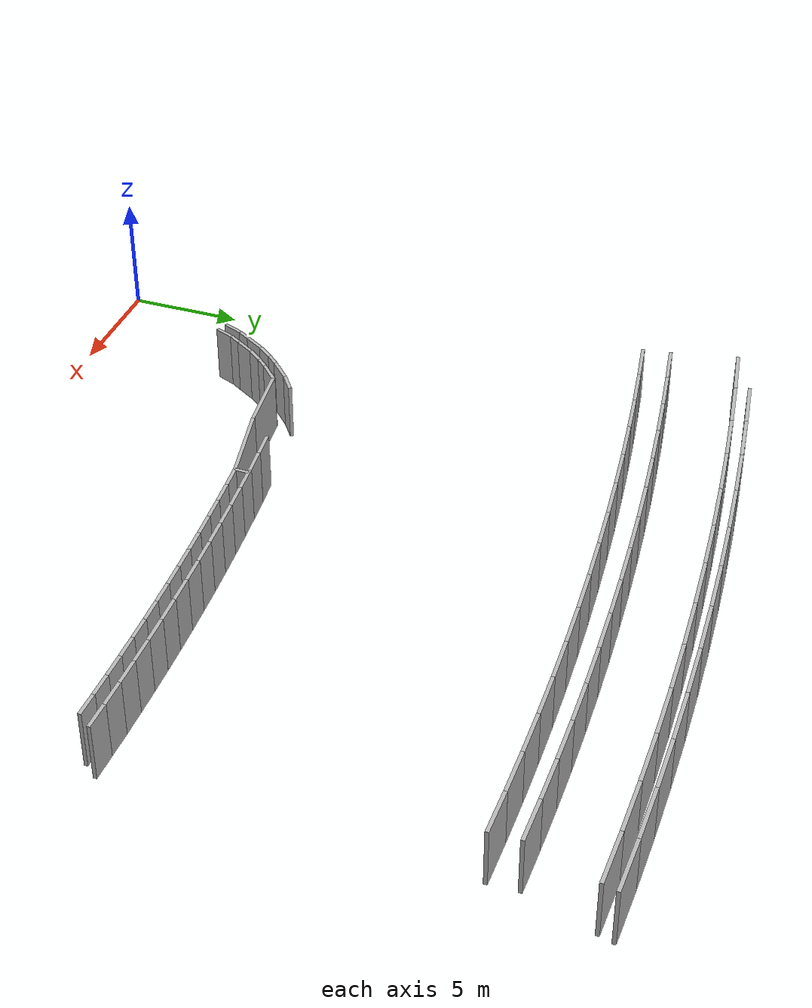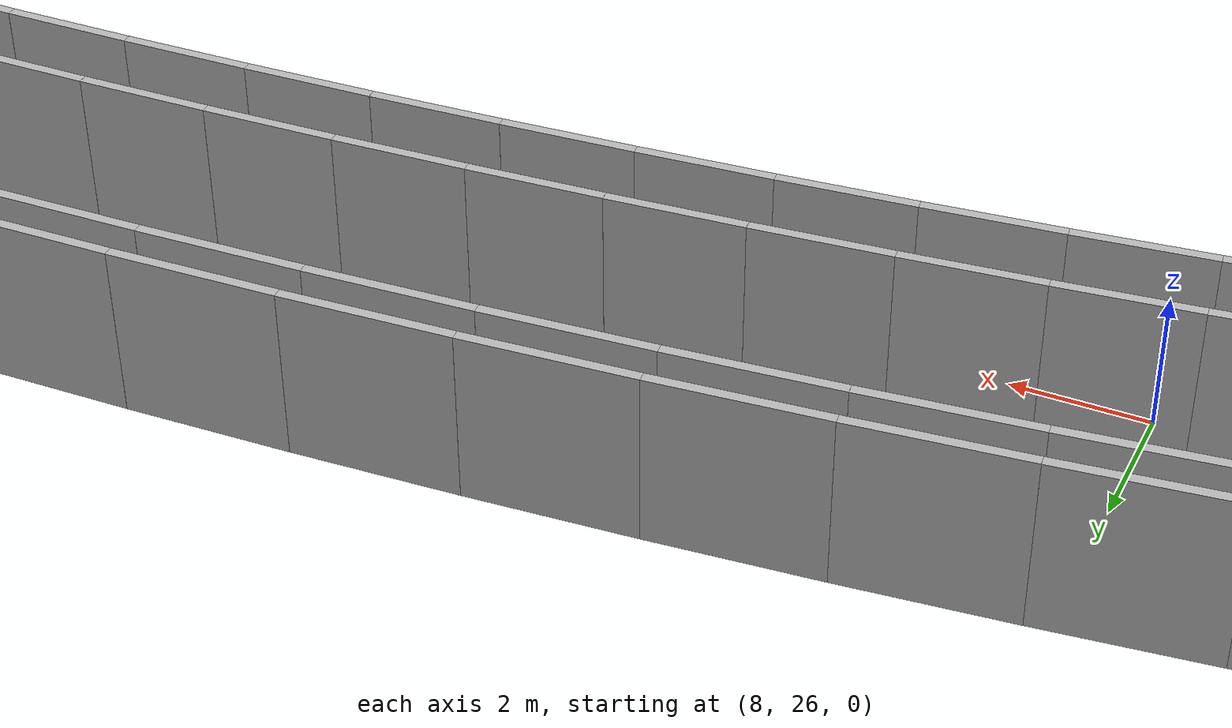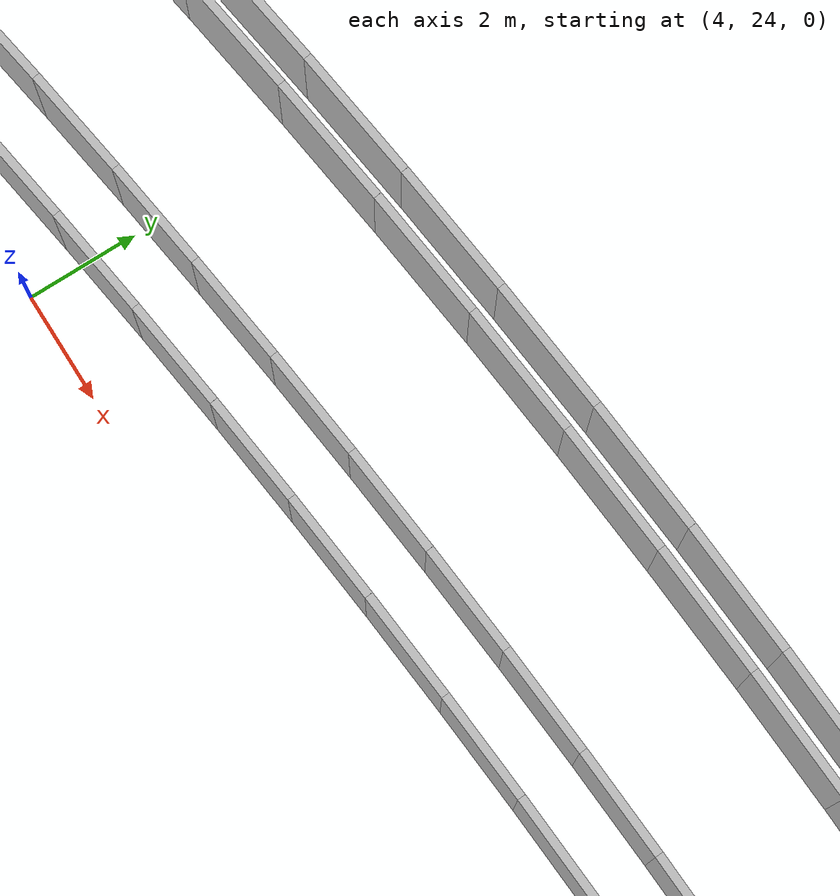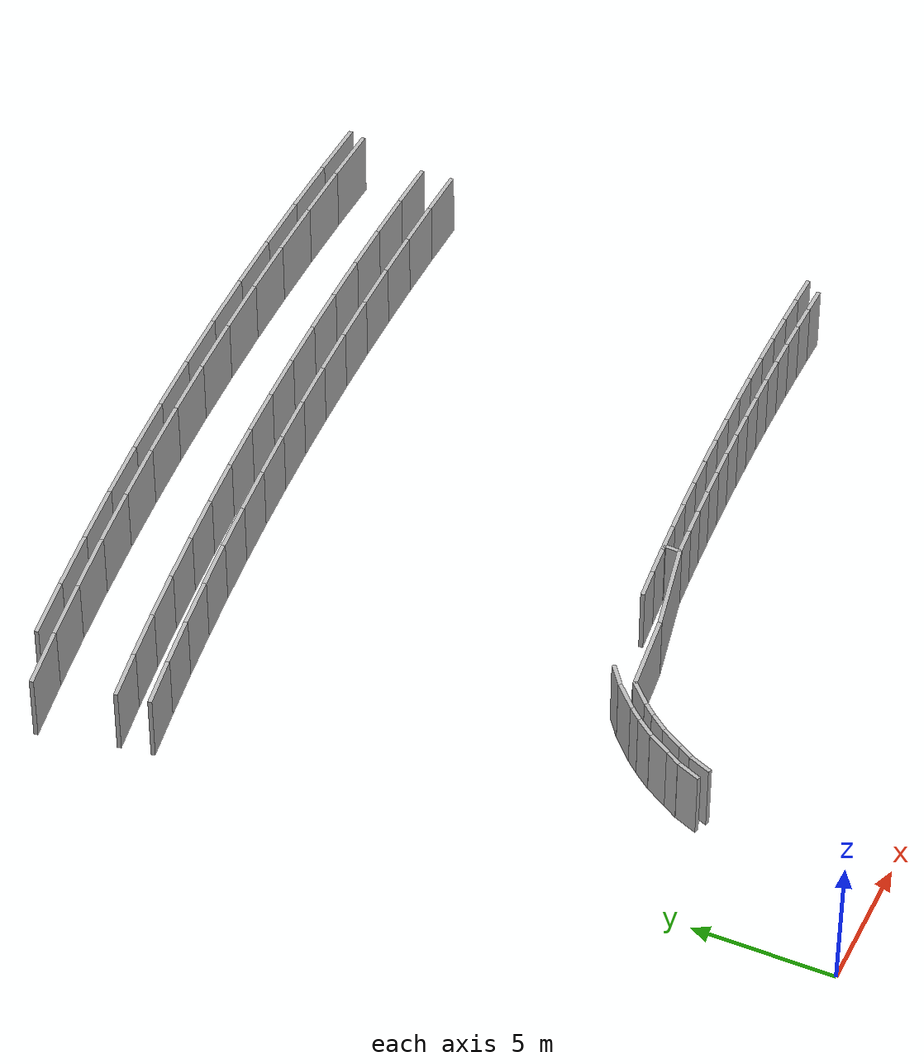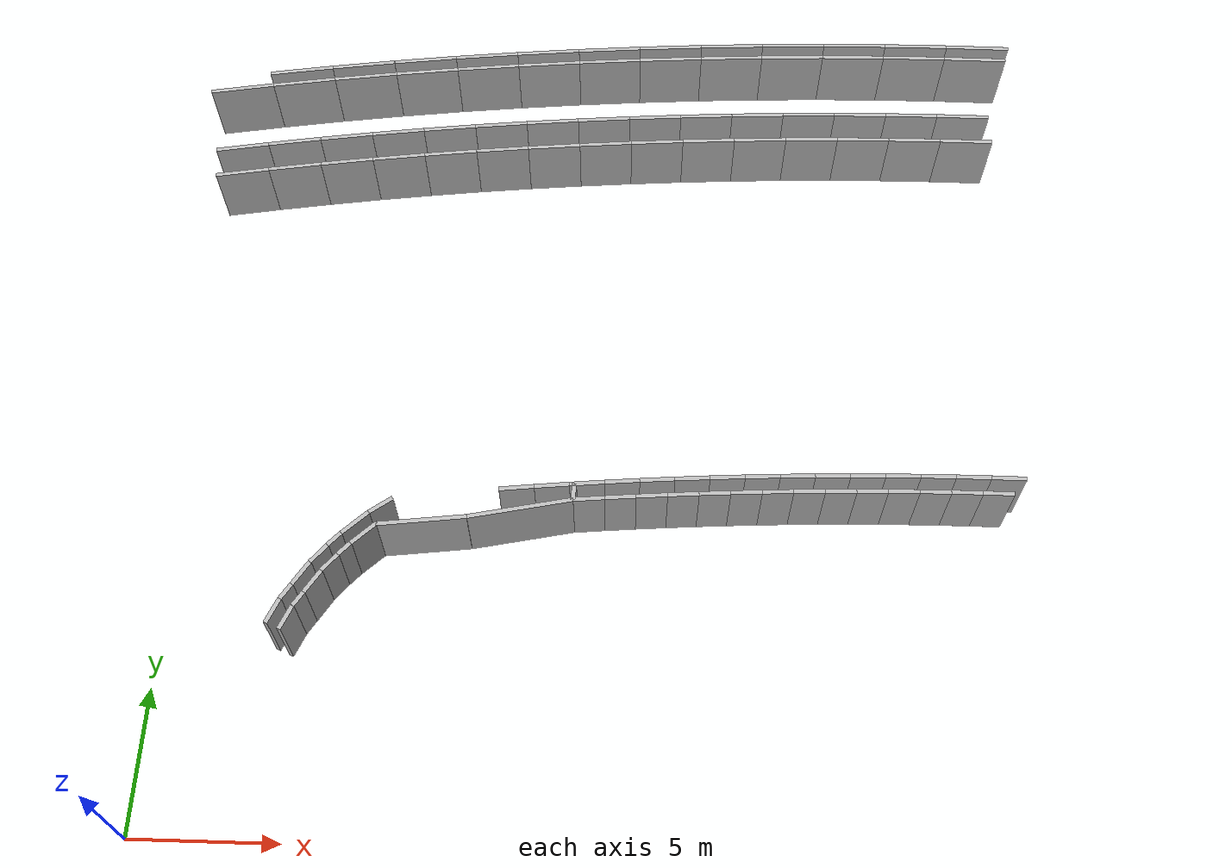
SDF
<sdf version="1.6">
 <model name="sps_0406">
  <static>1</static>
  <allow_auto_disable>0</allow_auto_disable>
  <link name="Wall451">
   <collision name="collision"><geometry><box><size>0.928626 0.15 2.5</size></box></geometry></collision>
   <visual name="visual">
    <geometry><box><size>0.928626 0.15 2.5</size></box></geometry>
    <transparency>0.0</transparency>
   </visual>
   <pose>7.33526 10.7762 1.25 0 -0 0.629869</pose>
  </link>
  <link name="Wall2146">
   <collision name="collision"><geometry><box><size>3.03317 0.15 2.5</size></box></geometry></collision>
   <visual name="visual">
    <geometry><box><size>3.03317 0.15 2.5</size></box></geometry>
    <transparency>0.0</transparency>
   </visual>
   <pose>8.74166 10.2674 1.25 0 -0 0.120362</pose>
  </link>
  <link name="Wall2148">
   <collision name="collision"><geometry><box><size>0.59976 0.15 2.5</size></box></geometry></collision>
   <visual name="visual">
    <geometry><box><size>0.59976 0.15 2.5</size></box></geometry>
    <transparency>0.0</transparency>
   </visual>
   <pose>13.7914 11.4866 1.25 0 -0 1.5204</pose>
  </link>
  <link name="Wall2537">
   <collision name="collision"><geometry><box><size>3.60525 0.15 2.5</size></box></geometry></collision>
   <visual name="visual">
    <geometry><box><size>3.60525 0.15 2.5</size></box></geometry>
    <transparency>0.0</transparency>
   </visual>
   <pose>12.0118 10.8183 1.25 0 -0 0.206048</pose>
  </link>
  <link name="Wall6654">
   <collision name="collision"><geometry><box><size>1.15065 0.15 2.5</size></box></geometry></collision>
   <visual name="visual">
    <geometry><box><size>1.15065 0.15 2.5</size></box></geometry>
    <transparency>0.0</transparency>
   </visual>
   <pose>6.54214 10.1073 1.25 0 0 -2.38384</pose>
  </link>
  <link name="Wall6655">
   <collision name="collision"><geometry><box><size>0.595889 0.15 2.5</size></box></geometry></collision>
   <visual name="visual">
    <geometry><box><size>0.595889 0.15 2.5</size></box></geometry>
    <transparency>0.0</transparency>
   </visual>
   <pose>5.92394 9.49129 1.25 0 0 -2.30801</pose>
  </link>
  <link name="Wall6656">
   <collision name="collision"><geometry><box><size>0.803346 0.15 2.5</size></box></geometry></collision>
   <visual name="visual">
    <geometry><box><size>0.803346 0.15 2.5</size></box></geometry>
    <transparency>0.0</transparency>
   </visual>
   <pose>5.47304 8.9568 1.25 0 0 -2.24454</pose>
  </link>
  <link name="Wall6657">
   <collision name="collision"><geometry><box><size>0.947839 0.15 2.5</size></box></geometry></collision>
   <visual name="visual">
    <geometry><box><size>0.947839 0.15 2.5</size></box></geometry>
    <transparency>0.0</transparency>
   </visual>
   <pose>4.97146 8.24089 1.25 0 0 -2.1289</pose>
  </link>
  <link name="Wall6658">
   <collision name="collision"><geometry><box><size>0.612831 0.15 2.5</size></box></geometry></collision>
   <visual name="visual">
    <geometry><box><size>0.612831 0.15 2.5</size></box></geometry>
    <transparency>0.0</transparency>
   </visual>
   <pose>4.55816 7.57899 1.25 0 0 -2.1291</pose>
  </link>
  <link name="Wall6659">
   <collision name="collision"><geometry><box><size>0.921616 0.15 2.5</size></box></geometry></collision>
   <visual name="visual">
    <geometry><box><size>0.921616 0.15 2.5</size></box></geometry>
    <transparency>0.0</transparency>
   </visual>
   <pose>4.21633 6.8947 1.25 0 0 -1.97093</pose>
  </link>
  <link name="Wall6680">
   <collision name="collision"><geometry><box><size>1.97999 0.15 2.5</size></box></geometry></collision>
   <visual name="visual">
    <geometry><box><size>1.97999 0.15 2.5</size></box></geometry>
    <transparency>0.0</transparency>
   </visual>
   <pose>28.1081 28.0351 1.25 0 -0 3.13857</pose>
  </link>
  <link name="Wall6681">
   <collision name="collision"><geometry><box><size>1.97989 0.15 2.5</size></box></geometry></collision>
   <visual name="visual">
    <geometry><box><size>1.97989 0.15 2.5</size></box></geometry>
    <transparency>0.0</transparency>
   </visual>
   <pose>26.1282 28.0286 1.25 0 0 -3.13201</pose>
  </link>
  <link name="Wall6682">
   <collision name="collision"><geometry><box><size>1.9801 0.15 2.5</size></box></geometry></collision>
   <visual name="visual">
    <geometry><box><size>1.9801 0.15 2.5</size></box></geometry>
    <transparency>0.0</transparency>
   </visual>
   <pose>24.1485 27.9973 1.25 0 0 -3.11955</pose>
  </link>
  <link name="Wall6683">
   <collision name="collision"><geometry><box><size>1.98001 0.15 2.5</size></box></geometry></collision>
   <visual name="visual">
    <geometry><box><size>1.98001 0.15 2.5</size></box></geometry>
    <transparency>0.0</transparency>
   </visual>
   <pose>22.1692 27.9412 1.25 0 0 -3.10694</pose>
  </link>
  <link name="Wall6684">
   <collision name="collision"><geometry><box><size>1.9798 0.15 2.5</size></box></geometry></collision>
   <visual name="visual">
    <geometry><box><size>1.9798 0.15 2.5</size></box></geometry>
    <transparency>0.0</transparency>
   </visual>
   <pose>20.191 27.8603 1.25 0 0 -3.0945</pose>
  </link>
  <link name="Wall6685">
   <collision name="collision"><geometry><box><size>1.97991 0.15 2.5</size></box></geometry></collision>
   <visual name="visual">
    <geometry><box><size>1.97991 0.15 2.5</size></box></geometry>
    <transparency>0.0</transparency>
   </visual>
   <pose>18.214 27.7546 1.25 0 0 -3.08188</pose>
  </link>
  <link name="Wall6686">
   <collision name="collision"><geometry><box><size>1.97994 0.15 2.5</size></box></geometry></collision>
   <visual name="visual">
    <geometry><box><size>1.97994 0.15 2.5</size></box></geometry>
    <transparency>0.0</transparency>
   </visual>
   <pose>16.2385 27.6242 1.25 0 0 -3.06949</pose>
  </link>
  <link name="Wall6687">
   <collision name="collision"><geometry><box><size>1.97989 0.15 2.5</size></box></geometry></collision>
   <visual name="visual">
    <geometry><box><size>1.97989 0.15 2.5</size></box></geometry>
    <transparency>0.0</transparency>
   </visual>
   <pose>14.2647 27.4691 1.25 0 0 -3.05684</pose>
  </link>
  <link name="Wall6688">
   <collision name="collision"><geometry><box><size>1.97999 0.15 2.5</size></box></geometry></collision>
   <visual name="visual">
    <geometry><box><size>1.97999 0.15 2.5</size></box></geometry>
    <transparency>0.0</transparency>
   </visual>
   <pose>12.293 27.2892 1.25 0 0 -3.04437</pose>
  </link>
  <link name="Wall6689">
   <collision name="collision"><geometry><box><size>1.98012 0.15 2.5</size></box></geometry></collision>
   <visual name="visual">
    <geometry><box><size>1.98012 0.15 2.5</size></box></geometry>
    <transparency>0.0</transparency>
   </visual>
   <pose>10.3235 27.0846 1.25 0 0 -3.03179</pose>
  </link>
  <link name="Wall6690">
   <collision name="collision"><geometry><box><size>1.97998 0.15 2.5</size></box></geometry></collision>
   <visual name="visual">
    <geometry><box><size>1.97998 0.15 2.5</size></box></geometry>
    <transparency>0.0</transparency>
   </visual>
   <pose>8.35683 26.8554 1.25 0 0 -3.01937</pose>
  </link>
  <link name="Wall6691">
   <collision name="collision"><geometry><box><size>1.97995 0.15 2.5</size></box></geometry></collision>
   <visual name="visual">
    <geometry><box><size>1.97995 0.15 2.5</size></box></geometry>
    <transparency>0.0</transparency>
   </visual>
   <pose>6.39324 26.6016 1.25 0 0 -3.00675</pose>
  </link>
  <link name="Wall6692">
   <collision name="collision"><geometry><box><size>1.98009 0.15 2.5</size></box></geometry></collision>
   <visual name="visual">
    <geometry><box><size>1.98009 0.15 2.5</size></box></geometry>
    <transparency>0.0</transparency>
   </visual>
   <pose>4.43294 26.3231 1.25 0 0 -2.99418</pose>
  </link>
  <link name="Wall6693">
   <collision name="collision"><geometry><box><size>1.97984 0.15 2.5</size></box></geometry></collision>
   <visual name="visual">
    <geometry><box><size>1.97984 0.15 2.5</size></box></geometry>
    <transparency>0.0</transparency>
   </visual>
   <pose>2.47634 26.0201 1.25 0 0 -2.98171</pose>
  </link>
  <link name="Wall6694">
   <collision name="collision"><geometry><box><size>1.97993 0.15 2.5</size></box></geometry></collision>
   <visual name="visual">
    <geometry><box><size>1.97993 0.15 2.5</size></box></geometry>
    <transparency>0.0</transparency>
   </visual>
   <pose>0.523765 25.6926 1.25 0 0 -2.96913</pose>
  </link>
  <link name="Wall6829">
   <collision name="collision"><geometry><box><size>1.1924 0.15 2.5</size></box></geometry></collision>
   <visual name="visual">
    <geometry><box><size>1.1924 0.15 2.5</size></box></geometry>
    <transparency>0.0</transparency>
   </visual>
   <pose>28.515 12.4463 1.25 0 -0 3.13555</pose>
  </link>
  <link name="Wall6830">
   <collision name="collision"><geometry><box><size>1.19257 0.15 2.5</size></box></geometry></collision>
   <visual name="visual">
    <geometry><box><size>1.19257 0.15 2.5</size></box></geometry>
    <transparency>0.0</transparency>
   </visual>
   <pose>27.3226 12.4486 1.25 0 0 -3.13939</pose>
  </link>
  <link name="Wall6831">
   <collision name="collision"><geometry><box><size>1.19269 0.15 2.5</size></box></geometry></collision>
   <visual name="visual">
    <geometry><box><size>1.19269 0.15 2.5</size></box></geometry>
    <transparency>0.0</transparency>
   </visual>
   <pose>26.13 12.441 1.25 0 0 -3.13105</pose>
  </link>
  <link name="Wall6832">
   <collision name="collision"><geometry><box><size>1.19241 0.15 2.5</size></box></geometry></collision>
   <visual name="visual">
    <geometry><box><size>1.19241 0.15 2.5</size></box></geometry>
    <transparency>0.0</transparency>
   </visual>
   <pose>24.9376 12.4234 1.25 0 0 -3.1226</pose>
  </link>
  <link name="Wall6833">
   <collision name="collision"><geometry><box><size>1.19246 0.15 2.5</size></box></geometry></collision>
   <visual name="visual">
    <geometry><box><size>1.19246 0.15 2.5</size></box></geometry>
    <transparency>0.0</transparency>
   </visual>
   <pose>23.7454 12.3958 1.25 0 0 -3.11426</pose>
  </link>
  <link name="Wall6834">
   <collision name="collision"><geometry><box><size>1.19252 0.15 2.5</size></box></geometry></collision>
   <visual name="visual">
    <geometry><box><size>1.19252 0.15 2.5</size></box></geometry>
    <transparency>0.0</transparency>
   </visual>
   <pose>22.5536 12.3583 1.25 0 0 -3.10607</pose>
  </link>
  <link name="Wall6835">
   <collision name="collision"><geometry><box><size>1.19275 0.15 2.5</size></box></geometry></collision>
   <visual name="visual">
    <geometry><box><size>1.19275 0.15 2.5</size></box></geometry>
    <transparency>0.0</transparency>
   </visual>
   <pose>21.3619 12.3108 1.25 0 0 -3.09747</pose>
  </link>
  <link name="Wall6836">
   <collision name="collision"><geometry><box><size>1.19269 0.15 2.5</size></box></geometry></collision>
   <visual name="visual">
    <geometry><box><size>1.19269 0.15 2.5</size></box></geometry>
    <transparency>0.0</transparency>
   </visual>
   <pose>20.1706 12.2532 1.25 0 0 -3.08906</pose>
  </link>
  <link name="Wall6837">
   <collision name="collision"><geometry><box><size>1.19275 0.15 2.5</size></box></geometry></collision>
   <visual name="visual">
    <geometry><box><size>1.19275 0.15 2.5</size></box></geometry>
    <transparency>0.0</transparency>
   </visual>
   <pose>18.9798 12.1857 1.25 0 0 -3.08087</pose>
  </link>
  <link name="Wall6838">
   <collision name="collision"><geometry><box><size>1.19249 0.15 2.5</size></box></geometry></collision>
   <visual name="visual">
    <geometry><box><size>1.19249 0.15 2.5</size></box></geometry>
    <transparency>0.0</transparency>
   </visual>
   <pose>17.7897 12.1083 1.25 0 0 -3.07244</pose>
  </link>
  <link name="Wall6839">
   <collision name="collision"><geometry><box><size>1.19254 0.15 2.5</size></box></geometry></collision>
   <visual name="visual">
    <geometry><box><size>1.19254 0.15 2.5</size></box></geometry>
    <transparency>0.0</transparency>
   </visual>
   <pose>16.6004 12.021 1.25 0 0 -3.06418</pose>
  </link>
  <link name="Wall6840">
   <collision name="collision"><geometry><box><size>1.19263 0.15 2.5</size></box></geometry></collision>
   <visual name="visual">
    <geometry><box><size>1.19263 0.15 2.5</size></box></geometry>
    <transparency>0.0</transparency>
   </visual>
   <pose>15.4118 11.9237 1.25 0 0 -3.05566</pose>
  </link>
  <link name="Wall6841">
   <collision name="collision"><geometry><box><size>1.19249 0.15 2.5</size></box></geometry></collision>
   <visual name="visual">
    <geometry><box><size>1.19249 0.15 2.5</size></box></geometry>
    <transparency>0.0</transparency>
   </visual>
   <pose>14.2241 11.8164 1.25 0 0 -3.04733</pose>
  </link>
  <link name="Wall6842">
   <collision name="collision"><geometry><box><size>1.19251 0.15 2.5</size></box></geometry></collision>
   <visual name="visual">
    <geometry><box><size>1.19251 0.15 2.5</size></box></geometry>
    <transparency>0.0</transparency>
   </visual>
   <pose>13.0373 11.6991 1.25 0 0 -3.03879</pose>
  </link>
  <link name="Wall6843">
   <collision name="collision"><geometry><box><size>1.19271 0.15 2.5</size></box></geometry></collision>
   <visual name="visual">
    <geometry><box><size>1.19271 0.15 2.5</size></box></geometry>
    <transparency>0.0</transparency>
   </visual>
   <pose>11.8516 11.5718 1.25 0 0 -3.03052</pose>
  </link>
  <link name="Wall9220">
   <collision name="collision"><geometry><box><size>0.0549976 0.15 2.5</size></box></geometry></collision>
   <visual name="visual">
    <geometry><box><size>0.0549976 0.15 2.5</size></box></geometry>
    <transparency>0.0</transparency>
   </visual>
   <pose>7.25826 10.1015 1.25 0 -0 0.630183</pose>
  </link>
  <link name="Wall9221">
   <collision name="collision"><geometry><box><size>1.09987 0.15 2.5</size></box></geometry></collision>
   <visual name="visual">
    <geometry><box><size>1.09987 0.15 2.5</size></box></geometry>
    <transparency>0.0</transparency>
   </visual>
   <pose>6.88116 9.73958 1.25 0 0 -2.38347</pose>
  </link>
  <link name="Wall9222">
   <collision name="collision"><geometry><box><size>0.561048 0.15 2.5</size></box></geometry></collision>
   <visual name="visual">
    <geometry><box><size>0.561048 0.15 2.5</size></box></geometry>
    <transparency>0.0</transparency>
   </visual>
   <pose>6.29314 9.15388 1.25 0 0 -2.30856</pose>
  </link>
  <link name="Wall9223">
   <collision name="collision"><geometry><box><size>0.758231 0.15 2.5</size></box></geometry></collision>
   <visual name="visual">
    <geometry><box><size>0.758231 0.15 2.5</size></box></geometry>
    <transparency>0.0</transparency>
   </visual>
   <pose>5.86794 8.65001 1.25 0 0 -2.24446</pose>
  </link>
  <link name="Wall9224">
   <collision name="collision"><geometry><box><size>0.919515 0.15 2.5</size></box></geometry></collision>
   <visual name="visual">
    <geometry><box><size>0.919515 0.15 2.5</size></box></geometry>
    <transparency>0.0</transparency>
   </visual>
   <pose>5.38784 7.96379 1.25 0 0 -2.12919</pose>
  </link>
  <link name="Wall9225">
   <collision name="collision"><geometry><box><size>0.573055 0.15 2.5</size></box></geometry></collision>
   <visual name="visual">
    <geometry><box><size>0.573055 0.15 2.5</size></box></geometry>
    <transparency>0.0</transparency>
   </visual>
   <pose>4.99255 7.33079 1.25 0 0 -2.12875</pose>
  </link>
  <link name="Wall9226">
   <collision name="collision"><geometry><box><size>0.881632 0.15 2.5</size></box></geometry></collision>
   <visual name="visual">
    <geometry><box><size>0.881632 0.15 2.5</size></box></geometry>
    <transparency>0.0</transparency>
   </visual>
   <pose>4.66915 6.68172 1.25 0 0 -1.97087</pose>
  </link>
  <link name="Wall9349">
   <collision name="collision"><geometry><box><size>1.97139 0.15 2.5</size></box></geometry></collision>
   <visual name="visual">
    <geometry><box><size>1.97139 0.15 2.5</size></box></geometry>
    <transparency>0.0</transparency>
   </visual>
   <pose>28.1565 26.8344 1.25 0 -0 3.13822</pose>
  </link>
  <link name="Wall9350">
   <collision name="collision"><geometry><box><size>1.97146 0.15 2.5</size></box></geometry></collision>
   <visual name="visual">
    <geometry><box><size>1.97146 0.15 2.5</size></box></geometry>
    <transparency>0.0</transparency>
   </visual>
   <pose>26.1852 26.8286 1.25 0 0 -3.13234</pose>
  </link>
  <link name="Wall9351">
   <collision name="collision"><geometry><box><size>1.97129 0.15 2.5</size></box></geometry></collision>
   <visual name="visual">
    <geometry><box><size>1.97129 0.15 2.5</size></box></geometry>
    <transparency>0.0</transparency>
   </visual>
   <pose>24.2141 26.798 1.25 0 0 -3.11979</pose>
  </link>
  <link name="Wall9352">
   <collision name="collision"><geometry><box><size>1.97156 0.15 2.5</size></box></geometry></collision>
   <visual name="visual">
    <geometry><box><size>1.97156 0.15 2.5</size></box></geometry>
    <transparency>0.0</transparency>
   </visual>
   <pose>22.2435 26.7426 1.25 0 0 -3.10719</pose>
  </link>
  <link name="Wall9353">
   <collision name="collision"><geometry><box><size>1.97135 0.15 2.5</size></box></geometry></collision>
   <visual name="visual">
    <geometry><box><size>1.97135 0.15 2.5</size></box></geometry>
    <transparency>0.0</transparency>
   </visual>
   <pose>20.2737 26.6624 1.25 0 0 -3.09461</pose>
  </link>
  <link name="Wall9354">
   <collision name="collision"><geometry><box><size>1.9715 0.15 2.5</size></box></geometry></collision>
   <visual name="visual">
    <geometry><box><size>1.9715 0.15 2.5</size></box></geometry>
    <transparency>0.0</transparency>
   </visual>
   <pose>18.3051 26.5575 1.25 0 0 -3.08212</pose>
  </link>
  <link name="Wall9355">
   <collision name="collision"><geometry><box><size>1.97131 0.15 2.5</size></box></geometry></collision>
   <visual name="visual">
    <geometry><box><size>1.97131 0.15 2.5</size></box></geometry>
    <transparency>0.0</transparency>
   </visual>
   <pose>16.338 26.4279 1.25 0 0 -3.06948</pose>
  </link>
  <link name="Wall9356">
   <collision name="collision"><geometry><box><size>1.97149 0.15 2.5</size></box></geometry></collision>
   <visual name="visual">
    <geometry><box><size>1.97149 0.15 2.5</size></box></geometry>
    <transparency>0.0</transparency>
   </visual>
   <pose>14.3727 26.2735 1.25 0 0 -3.05688</pose>
  </link>
  <link name="Wall9357">
   <collision name="collision"><geometry><box><size>1.97153 0.15 2.5</size></box></geometry></collision>
   <visual name="visual">
    <geometry><box><size>1.97153 0.15 2.5</size></box></geometry>
    <transparency>0.0</transparency>
   </visual>
   <pose>12.4094 26.0944 1.25 0 0 -3.04435</pose>
  </link>
  <link name="Wall9358">
   <collision name="collision"><geometry><box><size>1.97146 0.15 2.5</size></box></geometry></collision>
   <visual name="visual">
    <geometry><box><size>1.97146 0.15 2.5</size></box></geometry>
    <transparency>0.0</transparency>
   </visual>
   <pose>10.4484 25.8907 1.25 0 0 -3.03181</pose>
  </link>
  <link name="Wall9359">
   <collision name="collision"><geometry><box><size>1.97136 0.15 2.5</size></box></geometry></collision>
   <visual name="visual">
    <geometry><box><size>1.97136 0.15 2.5</size></box></geometry>
    <transparency>0.0</transparency>
   </visual>
   <pose>8.49035 25.6623 1.25 0 0 -3.01915</pose>
  </link>
  <link name="Wall9360">
   <collision name="collision"><geometry><box><size>1.97153 0.15 2.5</size></box></geometry></collision>
   <visual name="visual">
    <geometry><box><size>1.97153 0.15 2.5</size></box></geometry>
    <transparency>0.0</transparency>
   </visual>
   <pose>6.53524 25.4093 1.25 0 0 -3.00667</pose>
  </link>
  <link name="Wall9361">
   <collision name="collision"><geometry><box><size>1.97137 0.15 2.5</size></box></geometry></collision>
   <visual name="visual">
    <geometry><box><size>1.97137 0.15 2.5</size></box></geometry>
    <transparency>0.0</transparency>
   </visual>
   <pose>4.58346 25.1318 1.25 0 0 -2.99406</pose>
  </link>
  <link name="Wall9362">
   <collision name="collision"><geometry><box><size>1.97164 0.15 2.5</size></box></geometry></collision>
   <visual name="visual">
    <geometry><box><size>1.97164 0.15 2.5</size></box></geometry>
    <transparency>0.0</transparency>
   </visual>
   <pose>2.63528 24.8297 1.25 0 0 -2.98145</pose>
  </link>
  <link name="Wall9363">
   <collision name="collision"><geometry><box><size>1.97132 0.15 2.5</size></box></geometry></collision>
   <visual name="visual">
    <geometry><box><size>1.97132 0.15 2.5</size></box></geometry>
    <transparency>0.0</transparency>
   </visual>
   <pose>0.691062 24.5032 1.25 0 0 -2.96896</pose>
  </link>
  <link name="Wall9377">
   <collision name="collision"><geometry><box><size>2.40228 0.15 2.5</size></box></geometry></collision>
   <visual name="visual">
    <geometry><box><size>2.40228 0.15 2.5</size></box></geometry>
    <transparency>0.0</transparency>
   </visual>
   <pose>28.802 30.9294 1.25 0 -0 3.13435</pose>
  </link>
  <link name="Wall9378">
   <collision name="collision"><geometry><box><size>2.40229 0.15 2.5</size></box></geometry></collision>
   <visual name="visual">
    <geometry><box><size>2.40229 0.15 2.5</size></box></geometry>
    <transparency>0.0</transparency>
   </visual>
   <pose>26.3997 30.9288 1.25 0 0 -3.13387</pose>
  </link>
  <link name="Wall9379">
   <collision name="collision"><geometry><box><size>2.40216 0.15 2.5</size></box></geometry></collision>
   <visual name="visual">
    <geometry><box><size>2.40216 0.15 2.5</size></box></geometry>
    <transparency>0.0</transparency>
   </visual>
   <pose>23.9979 30.8924 1.25 0 0 -3.11903</pose>
  </link>
  <link name="Wall9380">
   <collision name="collision"><geometry><box><size>2.40233 0.15 2.5</size></box></geometry></collision>
   <visual name="visual">
    <geometry><box><size>2.40233 0.15 2.5</size></box></geometry>
    <transparency>0.0</transparency>
   </visual>
   <pose>21.5968 30.8202 1.25 0 0 -3.10403</pose>
  </link>
  <link name="Wall9381">
   <collision name="collision"><geometry><box><size>2.40211 0.15 2.5</size></box></geometry></collision>
   <visual name="visual">
    <geometry><box><size>2.40211 0.15 2.5</size></box></geometry>
    <transparency>0.0</transparency>
   </visual>
   <pose>19.197 30.7121 1.25 0 0 -3.08912</pose>
  </link>
  <link name="Wall9382">
   <collision name="collision"><geometry><box><size>2.40224 0.15 2.5</size></box></geometry></collision>
   <visual name="visual">
    <geometry><box><size>2.40224 0.15 2.5</size></box></geometry>
    <transparency>0.0</transparency>
   </visual>
   <pose>16.7992 30.5682 1.25 0 0 -3.07419</pose>
  </link>
  <link name="Wall9383">
   <collision name="collision"><geometry><box><size>2.40213 0.15 2.5</size></box></geometry></collision>
   <visual name="visual">
    <geometry><box><size>2.40213 0.15 2.5</size></box></geometry>
    <transparency>0.0</transparency>
   </visual>
   <pose>14.4039 30.3885 1.25 0 0 -3.05923</pose>
  </link>
  <link name="Wall9384">
   <collision name="collision"><geometry><box><size>2.40234 0.15 2.5</size></box></geometry></collision>
   <visual name="visual">
    <geometry><box><size>2.40234 0.15 2.5</size></box></geometry>
    <transparency>0.0</transparency>
   </visual>
   <pose>12.0114 30.1731 1.25 0 0 -3.04436</pose>
  </link>
  <link name="Wall9385">
   <collision name="collision"><geometry><box><size>2.40211 0.15 2.5</size></box></geometry></collision>
   <visual name="visual">
    <geometry><box><size>2.40211 0.15 2.5</size></box></geometry>
    <transparency>0.0</transparency>
   </visual>
   <pose>9.62237 29.9221 1.25 0 0 -3.02946</pose>
  </link>
  <link name="Wall9386">
   <collision name="collision"><geometry><box><size>2.4022 0.15 2.5</size></box></geometry></collision>
   <visual name="visual">
    <geometry><box><size>2.4022 0.15 2.5</size></box></geometry>
    <transparency>0.0</transparency>
   </visual>
   <pose>7.23745 29.6354 1.25 0 0 -3.01446</pose>
  </link>
  <link name="Wall9387">
   <collision name="collision"><geometry><box><size>2.40218 0.15 2.5</size></box></geometry></collision>
   <visual name="visual">
    <geometry><box><size>2.40218 0.15 2.5</size></box></geometry>
    <transparency>0.0</transparency>
   </visual>
   <pose>4.85705 29.3131 1.25 0 0 -2.99957</pose>
  </link>
  <link name="Wall9388">
   <collision name="collision"><geometry><box><size>2.40213 0.15 2.5</size></box></geometry></collision>
   <visual name="visual">
    <geometry><box><size>2.40213 0.15 2.5</size></box></geometry>
    <transparency>0.0</transparency>
   </visual>
   <pose>2.48174 28.9554 1.25 0 0 -2.98469</pose>
  </link>
  <link name="Wall9389">
   <collision name="collision"><geometry><box><size>2.40242 0.15 2.5</size></box></geometry></collision>
   <visual name="visual">
    <geometry><box><size>2.40242 0.15 2.5</size></box></geometry>
    <transparency>0.0</transparency>
   </visual>
   <pose>0.11193 28.5622 1.25 0 0 -2.96967</pose>
  </link>
  <link name="Wall9496">
   <collision name="collision"><geometry><box><size>1.06458 0.15 2.5</size></box></geometry></collision>
   <visual name="visual">
    <geometry><box><size>1.06458 0.15 2.5</size></box></geometry>
    <transparency>0.0</transparency>
   </visual>
   <pose>28.125 11.8639 1.25 0 -0 3.13821</pose>
  </link>
  <link name="Wall9497">
   <collision name="collision"><geometry><box><size>1.06465 0.15 2.5</size></box></geometry></collision>
   <visual name="visual">
    <geometry><box><size>1.06465 0.15 2.5</size></box></geometry>
    <transparency>0.0</transparency>
   </visual>
   <pose>27.0604 11.8635 1.25 0 0 -3.13746</pose>
  </link>
  <link name="Wall9498">
   <collision name="collision"><geometry><box><size>1.06446 0.15 2.5</size></box></geometry></collision>
   <visual name="visual">
    <geometry><box><size>1.06446 0.15 2.5</size></box></geometry>
    <transparency>0.0</transparency>
   </visual>
   <pose>25.9958 11.8552 1.25 0 0 -3.13012</pose>
  </link>
  <link name="Wall9499">
   <collision name="collision"><geometry><box><size>1.0644 0.15 2.5</size></box></geometry></collision>
   <visual name="visual">
    <geometry><box><size>1.0644 0.15 2.5</size></box></geometry>
    <transparency>0.0</transparency>
   </visual>
   <pose>24.9315 11.8389 1.25 0 0 -3.12244</pose>
  </link>
  <link name="Wall9500">
   <collision name="collision"><geometry><box><size>1.06458 0.15 2.5</size></box></geometry></collision>
   <visual name="visual">
    <geometry><box><size>1.06458 0.15 2.5</size></box></geometry>
    <transparency>0.0</transparency>
   </visual>
   <pose>23.8673 11.8146 1.25 0 0 -3.1151</pose>
  </link>
  <link name="Wall9501">
   <collision name="collision"><geometry><box><size>1.06459 0.15 2.5</size></box></geometry></collision>
   <visual name="visual">
    <geometry><box><size>1.06459 0.15 2.5</size></box></geometry>
    <transparency>0.0</transparency>
   </visual>
   <pose>22.8032 11.7823 1.25 0 0 -3.10742</pose>
  </link>
  <link name="Wall9502">
   <collision name="collision"><geometry><box><size>1.06434 0.15 2.5</size></box></geometry></collision>
   <visual name="visual">
    <geometry><box><size>1.06434 0.15 2.5</size></box></geometry>
    <transparency>0.0</transparency>
   </visual>
   <pose>21.7396 11.742 1.25 0 0 -3.1</pose>
  </link>
  <link name="Wall9503">
   <collision name="collision"><geometry><box><size>1.06445 0.15 2.5</size></box></geometry></collision>
   <visual name="visual">
    <geometry><box><size>1.06445 0.15 2.5</size></box></geometry>
    <transparency>0.0</transparency>
   </visual>
   <pose>20.6763 11.6938 1.25 0 0 -3.09255</pose>
  </link>
  <link name="Wall9504">
   <collision name="collision"><geometry><box><size>1.0645 0.15 2.5</size></box></geometry></collision>
   <visual name="visual">
    <geometry><box><size>1.0645 0.15 2.5</size></box></geometry>
    <transparency>0.0</transparency>
   </visual>
   <pose>19.6133 11.6377 1.25 0 0 -3.0852</pose>
  </link>
  <link name="Wall9505">
   <collision name="collision"><geometry><box><size>1.06464 0.15 2.5</size></box></geometry></collision>
   <visual name="visual">
    <geometry><box><size>1.06464 0.15 2.5</size></box></geometry>
    <transparency>0.0</transparency>
   </visual>
   <pose>18.5507 11.5735 1.25 0 0 -3.07734</pose>
  </link>
  <link name="Wall9506">
   <collision name="collision"><geometry><box><size>1.06449 0.15 2.5</size></box></geometry></collision>
   <visual name="visual">
    <geometry><box><size>1.06449 0.15 2.5</size></box></geometry>
    <transparency>0.0</transparency>
   </visual>
   <pose>17.4885 11.5013 1.25 0 0 -3.07009</pose>
  </link>
  <link name="Wall9507">
   <collision name="collision"><geometry><box><size>1.06437 0.15 2.5</size></box></geometry></collision>
   <visual name="visual">
    <geometry><box><size>1.06437 0.15 2.5</size></box></geometry>
    <transparency>0.0</transparency>
   </visual>
   <pose>16.4271 11.4212 1.25 0 0 -3.06243</pose>
  </link>
  <link name="Wall9508">
   <collision name="collision"><geometry><box><size>1.06453 0.15 2.5</size></box></geometry></collision>
   <visual name="visual">
    <geometry><box><size>1.06453 0.15 2.5</size></box></geometry>
    <transparency>0.0</transparency>
   </visual>
   <pose>15.3664 11.3331 1.25 0 0 -3.05502</pose>
  </link>
  <link name="Wall9509">
   <collision name="collision"><geometry><box><size>1.06452 0.15 2.5</size></box></geometry></collision>
   <visual name="visual">
    <geometry><box><size>1.06452 0.15 2.5</size></box></geometry>
    <transparency>0.0</transparency>
   </visual>
   <pose>14.3062 11.2371 1.25 0 0 -3.04754</pose>
  </link>
  <link name="Wall27694">
   <collision name="collision"><geometry><box><size>2.43068 0.15 2.5</size></box></geometry></collision>
   <visual name="visual">
    <geometry><box><size>2.43068 0.15 2.5</size></box></geometry>
    <transparency>0.0</transparency>
   </visual>
   <pose>28.944 31.528 1.25 0 -0 3.13343</pose>
  </link>
  <link name="Wall27695">
   <collision name="collision"><geometry><box><size>2.43084 0.15 2.5</size></box></geometry></collision>
   <visual name="visual">
    <geometry><box><size>2.43084 0.15 2.5</size></box></geometry>
    <transparency>0.0</transparency>
   </visual>
   <pose>26.5133 31.5295 1.25 0 0 -3.13466</pose>
  </link>
  <link name="Wall27696">
   <collision name="collision"><geometry><box><size>2.43082 0.15 2.5</size></box></geometry></collision>
   <visual name="visual">
    <geometry><box><size>2.43082 0.15 2.5</size></box></geometry>
    <transparency>0.0</transparency>
   </visual>
   <pose>24.0828 31.4944 1.25 0 0 -3.11962</pose>
  </link>
  <link name="Wall27697">
   <collision name="collision"><geometry><box><size>2.43087 0.15 2.5</size></box></geometry></collision>
   <visual name="visual">
    <geometry><box><size>2.43087 0.15 2.5</size></box></geometry>
    <transparency>0.0</transparency>
   </visual>
   <pose>21.653 31.4226 1.25 0 0 -3.1045</pose>
  </link>
  <link name="Wall27698">
   <collision name="collision"><geometry><box><size>2.43067 0.15 2.5</size></box></geometry></collision>
   <visual name="visual">
    <geometry><box><size>2.43067 0.15 2.5</size></box></geometry>
    <transparency>0.0</transparency>
   </visual>
   <pose>19.2248 31.3142 1.25 0 0 -3.08946</pose>
  </link>
  <link name="Wall27699">
   <collision name="collision"><geometry><box><size>2.4309 0.15 2.5</size></box></geometry></collision>
   <visual name="visual">
    <geometry><box><size>2.4309 0.15 2.5</size></box></geometry>
    <transparency>0.0</transparency>
   </visual>
   <pose>16.7984 31.1693 1.25 0 0 -3.07443</pose>
  </link>
  <link name="Wall27700">
   <collision name="collision"><geometry><box><size>2.43082 0.15 2.5</size></box></geometry></collision>
   <visual name="visual">
    <geometry><box><size>2.43082 0.15 2.5</size></box></geometry>
    <transparency>0.0</transparency>
   </visual>
   <pose>14.3744 30.9879 1.25 0 0 -3.05937</pose>
  </link>
  <link name="Wall27701">
   <collision name="collision"><geometry><box><size>2.43067 0.15 2.5</size></box></geometry></collision>
   <visual name="visual">
    <geometry><box><size>2.43067 0.15 2.5</size></box></geometry>
    <transparency>0.0</transparency>
   </visual>
   <pose>11.9535 30.7701 1.25 0 0 -3.04436</pose>
  </link>
  <link name="Wall27702">
   <collision name="collision"><geometry><box><size>2.4309 0.15 2.5</size></box></geometry></collision>
   <visual name="visual">
    <geometry><box><size>2.4309 0.15 2.5</size></box></geometry>
    <transparency>0.0</transparency>
   </visual>
   <pose>9.53606 30.5159 1.25 0 0 -3.0293</pose>
  </link>
  <link name="Wall27703">
   <collision name="collision"><geometry><box><size>2.43068 0.15 2.5</size></box></geometry></collision>
   <visual name="visual">
    <geometry><box><size>2.43068 0.15 2.5</size></box></geometry>
    <transparency>0.0</transparency>
   </visual>
   <pose>7.12276 30.2254 1.25 0 0 -3.01429</pose>
  </link>
  <link name="Wall27704">
   <collision name="collision"><geometry><box><size>2.43104 0.15 2.5</size></box></geometry></collision>
   <visual name="visual">
    <geometry><box><size>2.43104 0.15 2.5</size></box></geometry>
    <transparency>0.0</transparency>
   </visual>
   <pose>4.71404 29.8986 1.25 0 0 -2.99918</pose>
  </link>
  <link name="Wall27705">
   <collision name="collision"><geometry><box><size>2.4308 0.15 2.5</size></box></geometry></collision>
   <visual name="visual">
    <geometry><box><size>2.4308 0.15 2.5</size></box></geometry>
    <transparency>0.0</transparency>
   </visual>
   <pose>2.31045 29.5356 1.25 0 0 -2.98421</pose>
  </link>
 </model>
</sdf>
